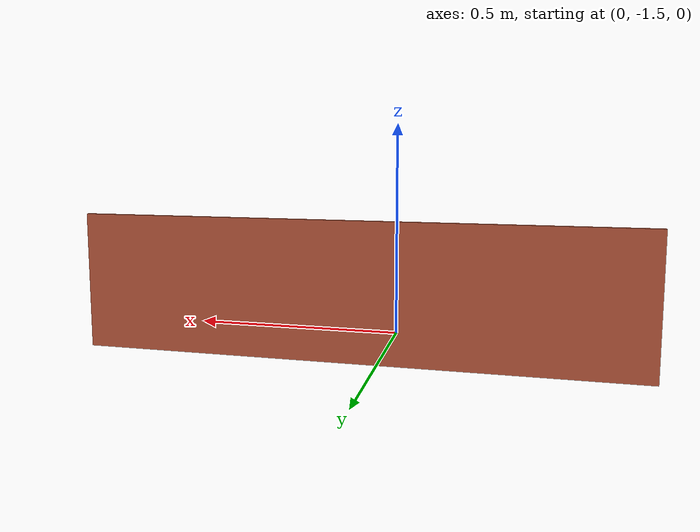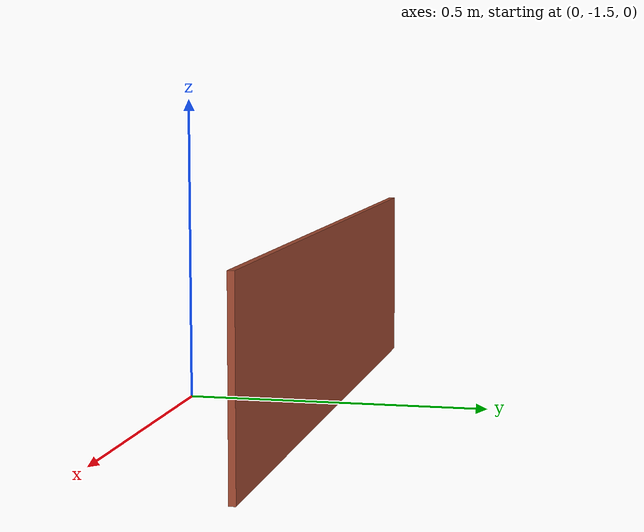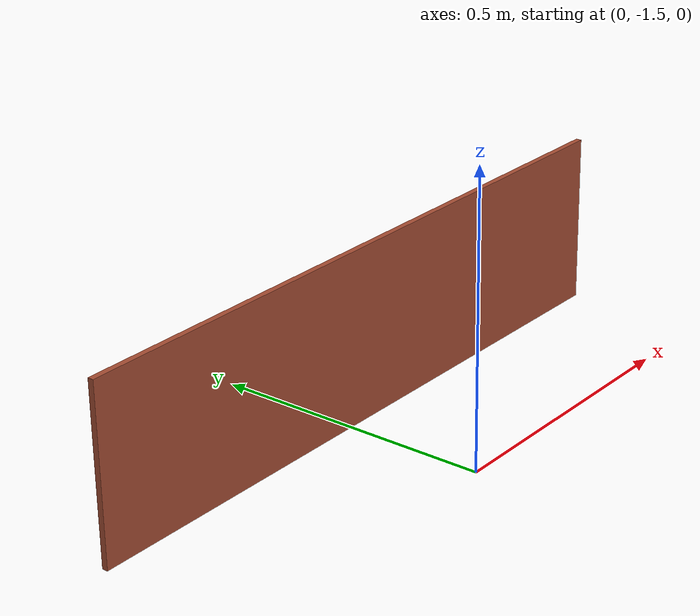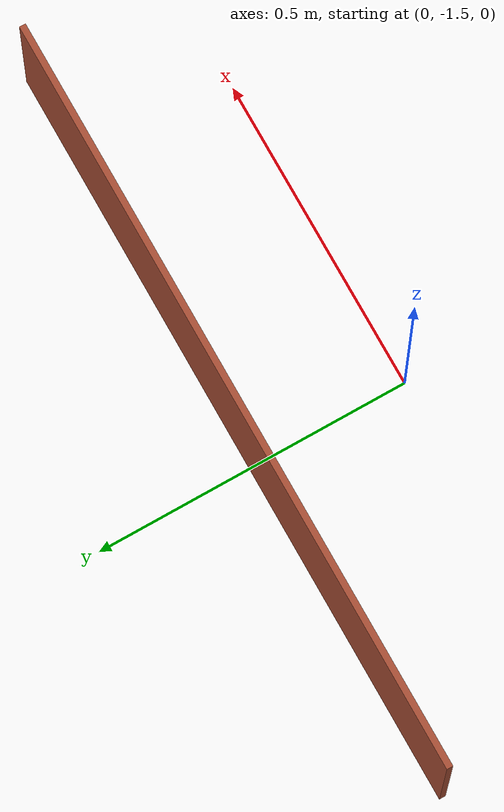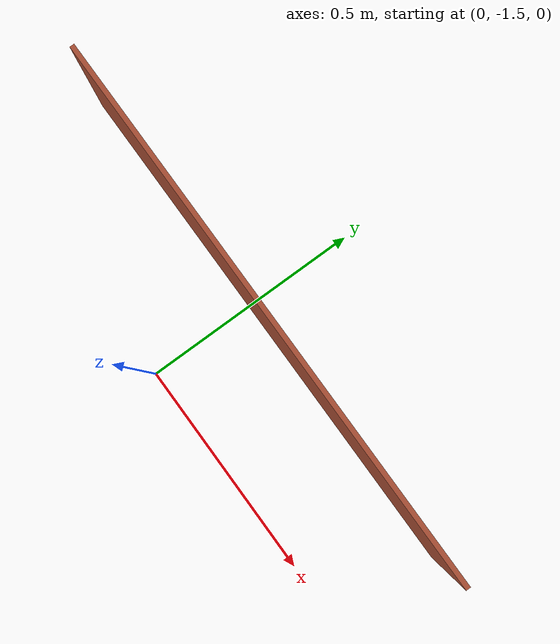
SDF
<?xml version='1.0'?>
<sdf version='1.7'>
  <model name='fusta1'>
    <pose>0.055 -0.6275 0 0 -0 0</pose>
    <link name='Wall_0'>
      <collision name='Wall_0_Collision'>
        <geometry>
          <box>
            <size>1.2 0.01 0.3</size>
          </box>
        </geometry>
        <pose>0 0 0.15 0 -0 0</pose>
      </collision>
      <visual name='Wall_0_Visual'>
        <pose>0 0 0.15 0 -0 0</pose>
        <geometry>
          <box>
            <size>1.2 0.01 0.3</size>
          </box>
        </geometry>
        <material>
          <script>
            <uri>file://media/materials/scripts/gazebo.material</uri>
            <name>Gazebo/Bricks</name>
          </script>
          <ambient>1 1 1 1</ambient>
        </material>
        <meta>
          <layer>0</layer>
        </meta>
      </visual>
      <pose>-0 -0.6225 0 0 -0 3.14159</pose>
    </link>
    <static>1</static>
  </model>
</sdf>
